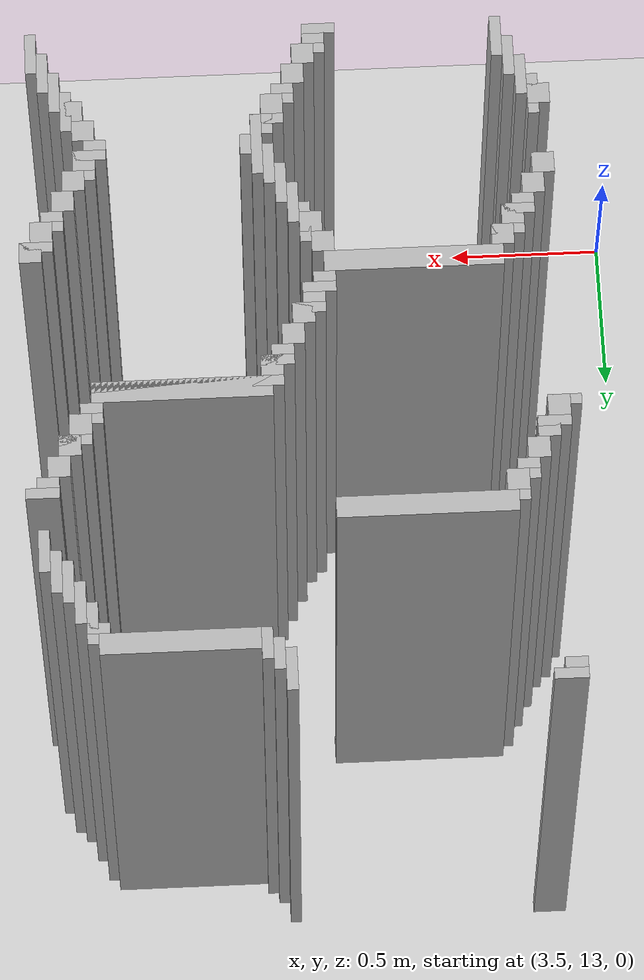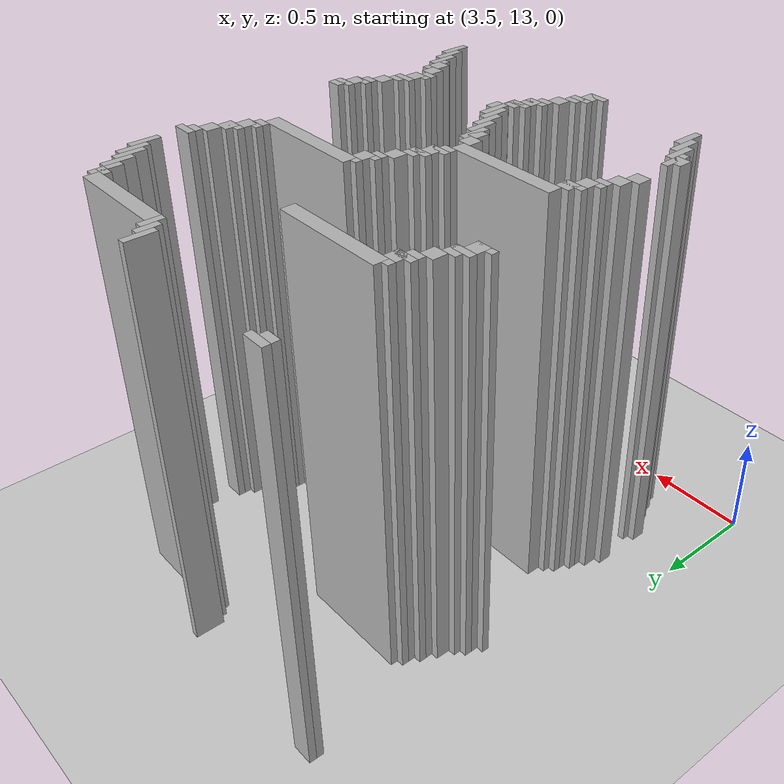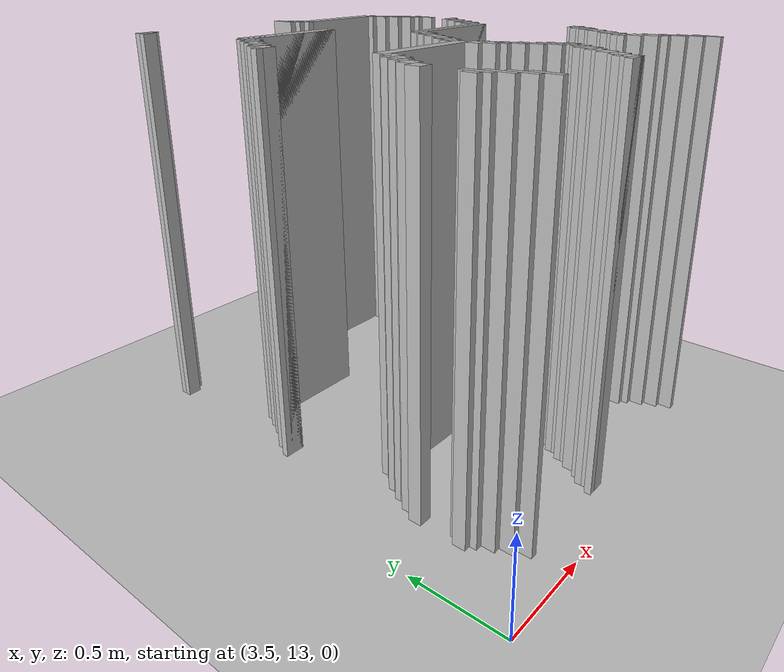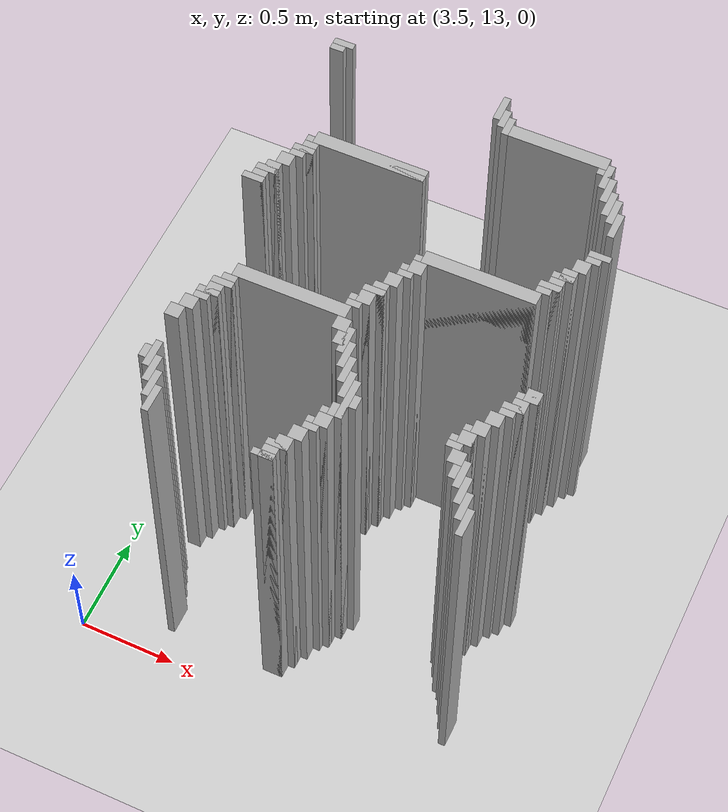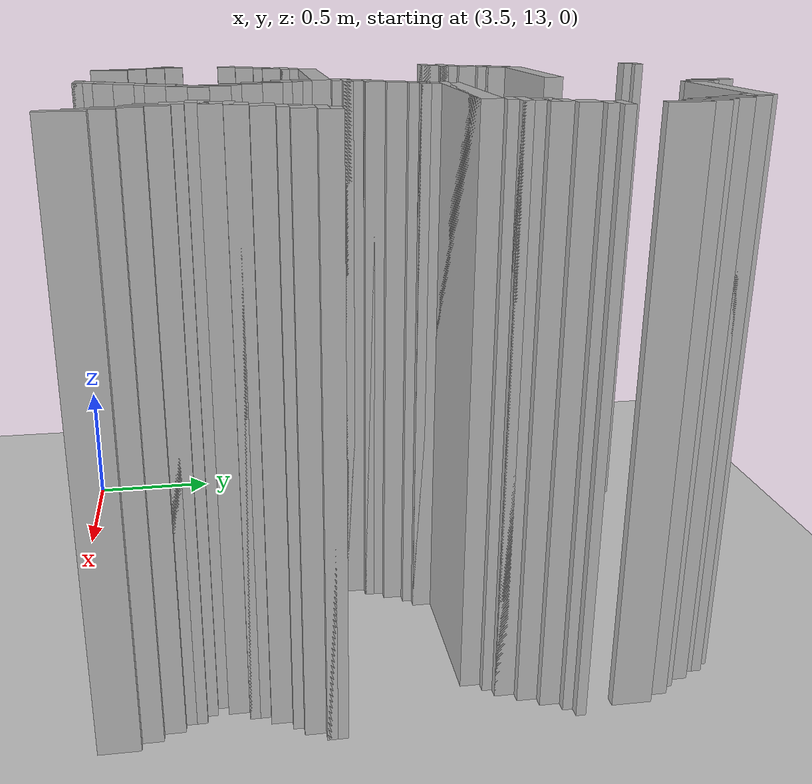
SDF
<sdf version="1.6">
 <world name="slam_world">
  <model name="ground_plane">
   <static>true</static>
   <link name="link">
    <collision name="collision">
     <geometry><plane><normal>0 0 1</normal><size>100 100</size></plane></geometry>
    </collision>
    <visual name="visual">
     <geometry><plane><normal>0 0 1</normal><size>100 100</size></plane></geometry>
     <material>
      <ambient>0.8 0.8 0.8 1</ambient>
      <diffuse>0.8 0.8 0.8 1</diffuse>
      <specular>0.8 0.8 0.8 1</specular>
     </material>
    </visual>
   </link>
  </model>
  <model name="wall_674">
   <static>true</static>
   <pose>3.810904872389791 15.400232018561484 1.0 0 0 0</pose>
   <link name="link">
    <collision name="collision">
     <geometry><box><size>0.10440835266821345 0.03480278422273782 2.0</size></box></geometry>
    </collision>
    <visual name="visual">
     <geometry><box><size>0.10440835266821345 0.03480278422273782 2.0</size></box></geometry>
     <material><ambient>0.5 0.5 0.5 1</ambient><diffuse>0.7 0.7 0.7 1</diffuse></material>
    </visual>
   </link>
  </model>
  <model name="wall_675">
   <static>true</static>
   <pose>4.646171693735498 15.348027842227378 1.0 0 0 0</pose>
   <link name="link">
    <collision name="collision">
     <geometry><box><size>0.03480278422273782 0.13921113689095127 2.0</size></box></geometry>
    </collision>
    <visual name="visual">
     <geometry><box><size>0.03480278422273782 0.13921113689095127 2.0</size></box></geometry>
     <material><ambient>0.5 0.5 0.5 1</ambient><diffuse>0.7 0.7 0.7 1</diffuse></material>
    </visual>
   </link>
  </model>
  <model name="wall_687">
   <static>true</static>
   <pose>3.793503480278422 15.365429234338746 1.0 0 0 0</pose>
   <link name="link">
    <collision name="collision">
     <geometry><box><size>0.06960556844547564 0.03480278422273782 2.0</size></box></geometry>
    </collision>
    <visual name="visual">
     <geometry><box><size>0.06960556844547564 0.03480278422273782 2.0</size></box></geometry>
     <material><ambient>0.5 0.5 0.5 1</ambient><diffuse>0.7 0.7 0.7 1</diffuse></material>
    </visual>
   </link>
  </model>
  <model name="wall_697">
   <static>true</static>
   <pose>4.6809744779582365 15.295823665893272 1.0 0 0 0</pose>
   <link name="link">
    <collision name="collision">
     <geometry><box><size>0.03480278422273782 0.10440835266821345 2.0</size></box></geometry>
    </collision>
    <visual name="visual">
     <geometry><box><size>0.03480278422273782 0.10440835266821345 2.0</size></box></geometry>
     <material><ambient>0.5 0.5 0.5 1</ambient><diffuse>0.7 0.7 0.7 1</diffuse></material>
    </visual>
   </link>
  </model>
  <model name="wall_713">
   <static>true</static>
   <pose>4.715777262180974 15.261020881670532 1.0 0 0 0</pose>
   <link name="link">
    <collision name="collision">
     <geometry><box><size>0.03480278422273782 0.10440835266821345 2.0</size></box></geometry>
    </collision>
    <visual name="visual">
     <geometry><box><size>0.03480278422273782 0.10440835266821345 2.0</size></box></geometry>
     <material><ambient>0.5 0.5 0.5 1</ambient><diffuse>0.7 0.7 0.7 1</diffuse></material>
    </visual>
   </link>
  </model>
  <model name="wall_726">
   <static>true</static>
   <pose>4.976798143851508 15.243619489559164 1.0 0 0 0</pose>
   <link name="link">
    <collision name="collision">
     <geometry><box><size>0.4872389791183295 0.06960556844547564 2.0</size></box></geometry>
    </collision>
    <visual name="visual">
     <geometry><box><size>0.4872389791183295 0.06960556844547564 2.0</size></box></geometry>
     <material><ambient>0.5 0.5 0.5 1</ambient><diffuse>0.7 0.7 0.7 1</diffuse></material>
    </visual>
   </link>
  </model>
  <model name="wall_736">
   <static>true</static>
   <pose>5.237819025522041 15.174013921113689 1.0 0 0 0</pose>
   <link name="link">
    <collision name="collision">
     <geometry><box><size>0.03480278422273782 0.13921113689095127 2.0</size></box></geometry>
    </collision>
    <visual name="visual">
     <geometry><box><size>0.03480278422273782 0.13921113689095127 2.0</size></box></geometry>
     <material><ambient>0.5 0.5 0.5 1</ambient><diffuse>0.7 0.7 0.7 1</diffuse></material>
    </visual>
   </link>
  </model>
  <model name="wall_748">
   <static>true</static>
   <pose>5.220417633410673 15.191415313225058 1.0 0 0 0</pose>
   <link name="link">
    <collision name="collision">
     <geometry><box><size>0.06960556844547564 0.03480278422273782 2.0</size></box></geometry>
    </collision>
    <visual name="visual">
     <geometry><box><size>0.06960556844547564 0.03480278422273782 2.0</size></box></geometry>
     <material><ambient>0.5 0.5 0.5 1</ambient><diffuse>0.7 0.7 0.7 1</diffuse></material>
    </visual>
   </link>
  </model>
  <model name="wall_762">
   <static>true</static>
   <pose>5.27262180974478 15.104408352668212 1.0 0 0 0</pose>
   <link name="link">
    <collision name="collision">
     <geometry><box><size>0.03480278422273782 0.13921113689095127 2.0</size></box></geometry>
    </collision>
    <visual name="visual">
     <geometry><box><size>0.03480278422273782 0.13921113689095127 2.0</size></box></geometry>
     <material><ambient>0.5 0.5 0.5 1</ambient><diffuse>0.7 0.7 0.7 1</diffuse></material>
    </visual>
   </link>
  </model>
  <model name="wall_776">
   <static>true</static>
   <pose>5.307424593967517 15.034802784222737 1.0 0 0 0</pose>
   <link name="link">
    <collision name="collision">
     <geometry><box><size>0.03480278422273782 0.13921113689095127 2.0</size></box></geometry>
    </collision>
    <visual name="visual">
     <geometry><box><size>0.03480278422273782 0.13921113689095127 2.0</size></box></geometry>
     <material><ambient>0.5 0.5 0.5 1</ambient><diffuse>0.7 0.7 0.7 1</diffuse></material>
    </visual>
   </link>
  </model>
  <model name="wall_790">
   <static>true</static>
   <pose>5.342227378190255 15.0 1.0 0 0 0</pose>
   <link name="link">
    <collision name="collision">
     <geometry><box><size>0.03480278422273782 0.13921113689095127 2.0</size></box></geometry>
    </collision>
    <visual name="visual">
     <geometry><box><size>0.03480278422273782 0.13921113689095127 2.0</size></box></geometry>
     <material><ambient>0.5 0.5 0.5 1</ambient><diffuse>0.7 0.7 0.7 1</diffuse></material>
    </visual>
   </link>
  </model>
  <model name="wall_816">
   <static>true</static>
   <pose>5.377030162412993 14.930394431554523 1.0 0 0 0</pose>
   <link name="link">
    <collision name="collision">
     <geometry><box><size>0.03480278422273782 0.13921113689095127 2.0</size></box></geometry>
    </collision>
    <visual name="visual">
     <geometry><box><size>0.03480278422273782 0.13921113689095127 2.0</size></box></geometry>
     <material><ambient>0.5 0.5 0.5 1</ambient><diffuse>0.7 0.7 0.7 1</diffuse></material>
    </visual>
   </link>
  </model>
  <model name="wall_859">
   <static>true</static>
   <pose>4.211136890951276 14.825986078886311 1.0 0 0 0</pose>
   <link name="link">
    <collision name="collision">
     <geometry><box><size>0.5568445475638051 0.06960556844547564 2.0</size></box></geometry>
    </collision>
    <visual name="visual">
     <geometry><box><size>0.5568445475638051 0.06960556844547564 2.0</size></box></geometry>
     <material><ambient>0.5 0.5 0.5 1</ambient><diffuse>0.7 0.7 0.7 1</diffuse></material>
    </visual>
   </link>
  </model>
  <model name="wall_873">
   <static>true</static>
   <pose>4.193735498839907 14.80858468677494 1.0 0 0 0</pose>
   <link name="link">
    <collision name="collision">
     <geometry><box><size>0.5916473317865429 0.03480278422273782 2.0</size></box></geometry>
    </collision>
    <visual name="visual">
     <geometry><box><size>0.5916473317865429 0.03480278422273782 2.0</size></box></geometry>
     <material><ambient>0.5 0.5 0.5 1</ambient><diffuse>0.7 0.7 0.7 1</diffuse></material>
    </visual>
   </link>
  </model>
  <model name="wall_886">
   <static>true</static>
   <pose>3.932714617169373 14.756380510440835 1.0 0 0 0</pose>
   <link name="link">
    <collision name="collision">
     <geometry><box><size>0.06960556844547564 0.06960556844547564 2.0</size></box></geometry>
    </collision>
    <visual name="visual">
     <geometry><box><size>0.06960556844547564 0.06960556844547564 2.0</size></box></geometry>
     <material><ambient>0.5 0.5 0.5 1</ambient><diffuse>0.7 0.7 0.7 1</diffuse></material>
    </visual>
   </link>
  </model>
  <model name="wall_902">
   <static>true</static>
   <pose>3.9153132250580045 14.738979118329466 1.0 0 0 0</pose>
   <link name="link">
    <collision name="collision">
     <geometry><box><size>0.10440835266821345 0.03480278422273782 2.0</size></box></geometry>
    </collision>
    <visual name="visual">
     <geometry><box><size>0.10440835266821345 0.03480278422273782 2.0</size></box></geometry>
     <material><ambient>0.5 0.5 0.5 1</ambient><diffuse>0.7 0.7 0.7 1</diffuse></material>
    </visual>
   </link>
  </model>
  <model name="wall_903">
   <static>true</static>
   <pose>5.377030162412993 14.738979118329466 1.0 0 0 0</pose>
   <link name="link">
    <collision name="collision">
     <geometry><box><size>0.10440835266821345 0.03480278422273782 2.0</size></box></geometry>
    </collision>
    <visual name="visual">
     <geometry><box><size>0.10440835266821345 0.03480278422273782 2.0</size></box></geometry>
     <material><ambient>0.5 0.5 0.5 1</ambient><diffuse>0.7 0.7 0.7 1</diffuse></material>
    </visual>
   </link>
  </model>
  <model name="wall_916">
   <static>true</static>
   <pose>3.897911832946636 14.704176334106728 1.0 0 0 0</pose>
   <link name="link">
    <collision name="collision">
     <geometry><box><size>0.06960556844547564 0.03480278422273782 2.0</size></box></geometry>
    </collision>
    <visual name="visual">
     <geometry><box><size>0.06960556844547564 0.03480278422273782 2.0</size></box></geometry>
     <material><ambient>0.5 0.5 0.5 1</ambient><diffuse>0.7 0.7 0.7 1</diffuse></material>
    </visual>
   </link>
  </model>
  <model name="wall_917">
   <static>true</static>
   <pose>5.359628770301624 14.704176334106728 1.0 0 0 0</pose>
   <link name="link">
    <collision name="collision">
     <geometry><box><size>0.06960556844547564 0.03480278422273782 2.0</size></box></geometry>
    </collision>
    <visual name="visual">
     <geometry><box><size>0.06960556844547564 0.03480278422273782 2.0</size></box></geometry>
     <material><ambient>0.5 0.5 0.5 1</ambient><diffuse>0.7 0.7 0.7 1</diffuse></material>
    </visual>
   </link>
  </model>
  <model name="wall_929">
   <static>true</static>
   <pose>3.863109048723898 14.65197215777262 1.0 0 0 0</pose>
   <link name="link">
    <collision name="collision">
     <geometry><box><size>0.06960556844547564 0.06960556844547564 2.0</size></box></geometry>
    </collision>
    <visual name="visual">
     <geometry><box><size>0.06960556844547564 0.06960556844547564 2.0</size></box></geometry>
     <material><ambient>0.5 0.5 0.5 1</ambient><diffuse>0.7 0.7 0.7 1</diffuse></material>
    </visual>
   </link>
  </model>
  <model name="wall_930">
   <static>true</static>
   <pose>5.324825986078886 14.65197215777262 1.0 0 0 0</pose>
   <link name="link">
    <collision name="collision">
     <geometry><box><size>0.06960556844547564 0.06960556844547564 2.0</size></box></geometry>
    </collision>
    <visual name="visual">
     <geometry><box><size>0.06960556844547564 0.06960556844547564 2.0</size></box></geometry>
     <material><ambient>0.5 0.5 0.5 1</ambient><diffuse>0.7 0.7 0.7 1</diffuse></material>
    </visual>
   </link>
  </model>
  <model name="wall_945">
   <static>true</static>
   <pose>3.82830626450116 14.582366589327146 1.0 0 0 0</pose>
   <link name="link">
    <collision name="collision">
     <geometry><box><size>0.06960556844547564 0.06960556844547564 2.0</size></box></geometry>
    </collision>
    <visual name="visual">
     <geometry><box><size>0.06960556844547564 0.06960556844547564 2.0</size></box></geometry>
     <material><ambient>0.5 0.5 0.5 1</ambient><diffuse>0.7 0.7 0.7 1</diffuse></material>
    </visual>
   </link>
  </model>
  <model name="wall_946">
   <static>true</static>
   <pose>5.290023201856148 14.582366589327146 1.0 0 0 0</pose>
   <link name="link">
    <collision name="collision">
     <geometry><box><size>0.06960556844547564 0.06960556844547564 2.0</size></box></geometry>
    </collision>
    <visual name="visual">
     <geometry><box><size>0.06960556844547564 0.06960556844547564 2.0</size></box></geometry>
     <material><ambient>0.5 0.5 0.5 1</ambient><diffuse>0.7 0.7 0.7 1</diffuse></material>
    </visual>
   </link>
  </model>
  <model name="wall_961">
   <static>true</static>
   <pose>3.810904872389791 14.564965197215777 1.0 0 0 0</pose>
   <link name="link">
    <collision name="collision">
     <geometry><box><size>0.10440835266821345 0.03480278422273782 2.0</size></box></geometry>
    </collision>
    <visual name="visual">
     <geometry><box><size>0.10440835266821345 0.03480278422273782 2.0</size></box></geometry>
     <material><ambient>0.5 0.5 0.5 1</ambient><diffuse>0.7 0.7 0.7 1</diffuse></material>
    </visual>
   </link>
  </model>
  <model name="wall_962">
   <static>true</static>
   <pose>5.27262180974478 14.564965197215777 1.0 0 0 0</pose>
   <link name="link">
    <collision name="collision">
     <geometry><box><size>0.10440835266821345 0.03480278422273782 2.0</size></box></geometry>
    </collision>
    <visual name="visual">
     <geometry><box><size>0.10440835266821345 0.03480278422273782 2.0</size></box></geometry>
     <material><ambient>0.5 0.5 0.5 1</ambient><diffuse>0.7 0.7 0.7 1</diffuse></material>
    </visual>
   </link>
  </model>
  <model name="wall_974">
   <static>true</static>
   <pose>3.793503480278422 14.512761020881669 1.0 0 0 0</pose>
   <link name="link">
    <collision name="collision">
     <geometry><box><size>0.06960556844547564 0.06960556844547564 2.0</size></box></geometry>
    </collision>
    <visual name="visual">
     <geometry><box><size>0.06960556844547564 0.06960556844547564 2.0</size></box></geometry>
     <material><ambient>0.5 0.5 0.5 1</ambient><diffuse>0.7 0.7 0.7 1</diffuse></material>
    </visual>
   </link>
  </model>
  <model name="wall_975">
   <static>true</static>
   <pose>5.25522041763341 14.512761020881669 1.0 0 0 0</pose>
   <link name="link">
    <collision name="collision">
     <geometry><box><size>0.06960556844547564 0.06960556844547564 2.0</size></box></geometry>
    </collision>
    <visual name="visual">
     <geometry><box><size>0.06960556844547564 0.06960556844547564 2.0</size></box></geometry>
     <material><ambient>0.5 0.5 0.5 1</ambient><diffuse>0.7 0.7 0.7 1</diffuse></material>
    </visual>
   </link>
  </model>
  <model name="wall_984">
   <static>true</static>
   <pose>3.776102088167053 14.4953596287703 1.0 0 0 0</pose>
   <link name="link">
    <collision name="collision">
     <geometry><box><size>0.10440835266821345 0.03480278422273782 2.0</size></box></geometry>
    </collision>
    <visual name="visual">
     <geometry><box><size>0.10440835266821345 0.03480278422273782 2.0</size></box></geometry>
     <material><ambient>0.5 0.5 0.5 1</ambient><diffuse>0.7 0.7 0.7 1</diffuse></material>
    </visual>
   </link>
  </model>
  <model name="wall_985">
   <static>true</static>
   <pose>5.237819025522041 14.4953596287703 1.0 0 0 0</pose>
   <link name="link">
    <collision name="collision">
     <geometry><box><size>0.10440835266821345 0.03480278422273782 2.0</size></box></geometry>
    </collision>
    <visual name="visual">
     <geometry><box><size>0.10440835266821345 0.03480278422273782 2.0</size></box></geometry>
     <material><ambient>0.5 0.5 0.5 1</ambient><diffuse>0.7 0.7 0.7 1</diffuse></material>
    </visual>
   </link>
  </model>
  <model name="wall_998">
   <static>true</static>
   <pose>5.220417633410673 14.460556844547563 1.0 0 0 0</pose>
   <link name="link">
    <collision name="collision">
     <geometry><box><size>0.06960556844547564 0.03480278422273782 2.0</size></box></geometry>
    </collision>
    <visual name="visual">
     <geometry><box><size>0.06960556844547564 0.03480278422273782 2.0</size></box></geometry>
     <material><ambient>0.5 0.5 0.5 1</ambient><diffuse>0.7 0.7 0.7 1</diffuse></material>
    </visual>
   </link>
  </model>
  <model name="wall_1007">
   <static>true</static>
   <pose>4.94199535962877 14.408352668213457 1.0 0 0 0</pose>
   <link name="link">
    <collision name="collision">
     <geometry><box><size>0.5568445475638051 0.06960556844547564 2.0</size></box></geometry>
    </collision>
    <visual name="visual">
     <geometry><box><size>0.5568445475638051 0.06960556844547564 2.0</size></box></geometry>
     <material><ambient>0.5 0.5 0.5 1</ambient><diffuse>0.7 0.7 0.7 1</diffuse></material>
    </visual>
   </link>
  </model>
  <model name="wall_1022">
   <static>true</static>
   <pose>4.924593967517401 14.390951276102088 1.0 0 0 0</pose>
   <link name="link">
    <collision name="collision">
     <geometry><box><size>0.5916473317865429 0.03480278422273782 2.0</size></box></geometry>
    </collision>
    <visual name="visual">
     <geometry><box><size>0.5916473317865429 0.03480278422273782 2.0</size></box></geometry>
     <material><ambient>0.5 0.5 0.5 1</ambient><diffuse>0.7 0.7 0.7 1</diffuse></material>
    </visual>
   </link>
  </model>
  <model name="wall_1034">
   <static>true</static>
   <pose>4.663573085846868 14.33874709976798 1.0 0 0 0</pose>
   <link name="link">
    <collision name="collision">
     <geometry><box><size>0.06960556844547564 0.06960556844547564 2.0</size></box></geometry>
    </collision>
    <visual name="visual">
     <geometry><box><size>0.06960556844547564 0.06960556844547564 2.0</size></box></geometry>
     <material><ambient>0.5 0.5 0.5 1</ambient><diffuse>0.7 0.7 0.7 1</diffuse></material>
    </visual>
   </link>
  </model>
  <model name="wall_1046">
   <static>true</static>
   <pose>4.646171693735498 14.321345707656612 1.0 0 0 0</pose>
   <link name="link">
    <collision name="collision">
     <geometry><box><size>0.10440835266821345 0.03480278422273782 2.0</size></box></geometry>
    </collision>
    <visual name="visual">
     <geometry><box><size>0.10440835266821345 0.03480278422273782 2.0</size></box></geometry>
     <material><ambient>0.5 0.5 0.5 1</ambient><diffuse>0.7 0.7 0.7 1</diffuse></material>
    </visual>
   </link>
  </model>
  <model name="wall_1057">
   <static>true</static>
   <pose>4.6287703016241295 14.286542923433874 1.0 0 0 0</pose>
   <link name="link">
    <collision name="collision">
     <geometry><box><size>0.06960556844547564 0.03480278422273782 2.0</size></box></geometry>
    </collision>
    <visual name="visual">
     <geometry><box><size>0.06960556844547564 0.03480278422273782 2.0</size></box></geometry>
     <material><ambient>0.5 0.5 0.5 1</ambient><diffuse>0.7 0.7 0.7 1</diffuse></material>
    </visual>
   </link>
  </model>
  <model name="wall_1065">
   <static>true</static>
   <pose>4.593967517401392 14.234338747099768 1.0 0 0 0</pose>
   <link name="link">
    <collision name="collision">
     <geometry><box><size>0.06960556844547564 0.06960556844547564 2.0</size></box></geometry>
    </collision>
    <visual name="visual">
     <geometry><box><size>0.06960556844547564 0.06960556844547564 2.0</size></box></geometry>
     <material><ambient>0.5 0.5 0.5 1</ambient><diffuse>0.7 0.7 0.7 1</diffuse></material>
    </visual>
   </link>
  </model>
  <model name="wall_1077">
   <static>true</static>
   <pose>4.559164733178654 14.164733178654291 1.0 0 0 0</pose>
   <link name="link">
    <collision name="collision">
     <geometry><box><size>0.06960556844547564 0.06960556844547564 2.0</size></box></geometry>
    </collision>
    <visual name="visual">
     <geometry><box><size>0.06960556844547564 0.06960556844547564 2.0</size></box></geometry>
     <material><ambient>0.5 0.5 0.5 1</ambient><diffuse>0.7 0.7 0.7 1</diffuse></material>
    </visual>
   </link>
  </model>
  <model name="wall_1089">
   <static>true</static>
   <pose>4.541763341067285 14.147331786542923 1.0 0 0 0</pose>
   <link name="link">
    <collision name="collision">
     <geometry><box><size>0.10440835266821345 0.03480278422273782 2.0</size></box></geometry>
    </collision>
    <visual name="visual">
     <geometry><box><size>0.10440835266821345 0.03480278422273782 2.0</size></box></geometry>
     <material><ambient>0.5 0.5 0.5 1</ambient><diffuse>0.7 0.7 0.7 1</diffuse></material>
    </visual>
   </link>
  </model>
  <model name="wall_1100">
   <static>true</static>
   <pose>4.524361948955916 14.095127610208817 1.0 0 0 0</pose>
   <link name="link">
    <collision name="collision">
     <geometry><box><size>0.06960556844547564 0.06960556844547564 2.0</size></box></geometry>
    </collision>
    <visual name="visual">
     <geometry><box><size>0.06960556844547564 0.06960556844547564 2.0</size></box></geometry>
     <material><ambient>0.5 0.5 0.5 1</ambient><diffuse>0.7 0.7 0.7 1</diffuse></material>
    </visual>
   </link>
  </model>
  <model name="wall_1108">
   <static>true</static>
   <pose>4.506960556844548 14.077726218097448 1.0 0 0 0</pose>
   <link name="link">
    <collision name="collision">
     <geometry><box><size>0.10440835266821345 0.03480278422273782 2.0</size></box></geometry>
    </collision>
    <visual name="visual">
     <geometry><box><size>0.10440835266821345 0.03480278422273782 2.0</size></box></geometry>
     <material><ambient>0.5 0.5 0.5 1</ambient><diffuse>0.7 0.7 0.7 1</diffuse></material>
    </visual>
   </link>
  </model>
  <model name="wall_1119">
   <static>true</static>
   <pose>4.489559164733178 14.042923433874709 1.0 0 0 0</pose>
   <link name="link">
    <collision name="collision">
     <geometry><box><size>0.06960556844547564 0.03480278422273782 2.0</size></box></geometry>
    </collision>
    <visual name="visual">
     <geometry><box><size>0.06960556844547564 0.03480278422273782 2.0</size></box></geometry>
     <material><ambient>0.5 0.5 0.5 1</ambient><diffuse>0.7 0.7 0.7 1</diffuse></material>
    </visual>
   </link>
  </model>
  <model name="wall_1128">
   <static>true</static>
   <pose>4.211136890951276 13.990719257540603 1.0 0 0 0</pose>
   <link name="link">
    <collision name="collision">
     <geometry><box><size>0.5568445475638051 0.06960556844547564 2.0</size></box></geometry>
    </collision>
    <visual name="visual">
     <geometry><box><size>0.5568445475638051 0.06960556844547564 2.0</size></box></geometry>
     <material><ambient>0.5 0.5 0.5 1</ambient><diffuse>0.7 0.7 0.7 1</diffuse></material>
    </visual>
   </link>
  </model>
  <model name="wall_1142">
   <static>true</static>
   <pose>3.932714617169373 13.921113689095128 1.0 0 0 0</pose>
   <link name="link">
    <collision name="collision">
     <geometry><box><size>0.06960556844547564 0.06960556844547564 2.0</size></box></geometry>
    </collision>
    <visual name="visual">
     <geometry><box><size>0.06960556844547564 0.06960556844547564 2.0</size></box></geometry>
     <material><ambient>0.5 0.5 0.5 1</ambient><diffuse>0.7 0.7 0.7 1</diffuse></material>
    </visual>
   </link>
  </model>
  <model name="wall_1143">
   <static>true</static>
   <pose>4.489559164733178 13.921113689095128 1.0 0 0 0</pose>
   <link name="link">
    <collision name="collision">
     <geometry><box><size>0.06960556844547564 0.06960556844547564 2.0</size></box></geometry>
    </collision>
    <visual name="visual">
     <geometry><box><size>0.06960556844547564 0.06960556844547564 2.0</size></box></geometry>
     <material><ambient>0.5 0.5 0.5 1</ambient><diffuse>0.7 0.7 0.7 1</diffuse></material>
    </visual>
   </link>
  </model>
  <model name="wall_1144">
   <static>true</static>
   <pose>5.3944315545243615 13.921113689095128 1.0 0 0 0</pose>
   <link name="link">
    <collision name="collision">
     <geometry><box><size>0.06960556844547564 0.06960556844547564 2.0</size></box></geometry>
    </collision>
    <visual name="visual">
     <geometry><box><size>0.06960556844547564 0.06960556844547564 2.0</size></box></geometry>
     <material><ambient>0.5 0.5 0.5 1</ambient><diffuse>0.7 0.7 0.7 1</diffuse></material>
    </visual>
   </link>
  </model>
  <model name="wall_1159">
   <static>true</static>
   <pose>3.9153132250580045 13.903712296983759 1.0 0 0 0</pose>
   <link name="link">
    <collision name="collision">
     <geometry><box><size>0.10440835266821345 0.03480278422273782 2.0</size></box></geometry>
    </collision>
    <visual name="visual">
     <geometry><box><size>0.10440835266821345 0.03480278422273782 2.0</size></box></geometry>
     <material><ambient>0.5 0.5 0.5 1</ambient><diffuse>0.7 0.7 0.7 1</diffuse></material>
    </visual>
   </link>
  </model>
  <model name="wall_1160">
   <static>true</static>
   <pose>4.541763341067285 13.851508120649651 1.0 0 0 0</pose>
   <link name="link">
    <collision name="collision">
     <geometry><box><size>0.03480278422273782 0.13921113689095127 2.0</size></box></geometry>
    </collision>
    <visual name="visual">
     <geometry><box><size>0.03480278422273782 0.13921113689095127 2.0</size></box></geometry>
     <material><ambient>0.5 0.5 0.5 1</ambient><diffuse>0.7 0.7 0.7 1</diffuse></material>
    </visual>
   </link>
  </model>
  <model name="wall_1161">
   <static>true</static>
   <pose>5.377030162412993 13.903712296983759 1.0 0 0 0</pose>
   <link name="link">
    <collision name="collision">
     <geometry><box><size>0.10440835266821345 0.03480278422273782 2.0</size></box></geometry>
    </collision>
    <visual name="visual">
     <geometry><box><size>0.10440835266821345 0.03480278422273782 2.0</size></box></geometry>
     <material><ambient>0.5 0.5 0.5 1</ambient><diffuse>0.7 0.7 0.7 1</diffuse></material>
    </visual>
   </link>
  </model>
  <model name="wall_1176">
   <static>true</static>
   <pose>3.897911832946636 13.851508120649651 1.0 0 0 0</pose>
   <link name="link">
    <collision name="collision">
     <geometry><box><size>0.06960556844547564 0.06960556844547564 2.0</size></box></geometry>
    </collision>
    <visual name="visual">
     <geometry><box><size>0.06960556844547564 0.06960556844547564 2.0</size></box></geometry>
     <material><ambient>0.5 0.5 0.5 1</ambient><diffuse>0.7 0.7 0.7 1</diffuse></material>
    </visual>
   </link>
  </model>
  <model name="wall_1177">
   <static>true</static>
   <pose>4.524361948955916 13.851508120649651 1.0 0 0 0</pose>
   <link name="link">
    <collision name="collision">
     <geometry><box><size>0.06960556844547564 0.06960556844547564 2.0</size></box></geometry>
    </collision>
    <visual name="visual">
     <geometry><box><size>0.06960556844547564 0.06960556844547564 2.0</size></box></geometry>
     <material><ambient>0.5 0.5 0.5 1</ambient><diffuse>0.7 0.7 0.7 1</diffuse></material>
    </visual>
   </link>
  </model>
  <model name="wall_1178">
   <static>true</static>
   <pose>5.359628770301624 13.851508120649651 1.0 0 0 0</pose>
   <link name="link">
    <collision name="collision">
     <geometry><box><size>0.06960556844547564 0.06960556844547564 2.0</size></box></geometry>
    </collision>
    <visual name="visual">
     <geometry><box><size>0.06960556844547564 0.06960556844547564 2.0</size></box></geometry>
     <material><ambient>0.5 0.5 0.5 1</ambient><diffuse>0.7 0.7 0.7 1</diffuse></material>
    </visual>
   </link>
  </model>
  <model name="wall_1193">
   <static>true</static>
   <pose>3.8805104408352666 13.834106728538282 1.0 0 0 0</pose>
   <link name="link">
    <collision name="collision">
     <geometry><box><size>0.10440835266821345 0.03480278422273782 2.0</size></box></geometry>
    </collision>
    <visual name="visual">
     <geometry><box><size>0.10440835266821345 0.03480278422273782 2.0</size></box></geometry>
     <material><ambient>0.5 0.5 0.5 1</ambient><diffuse>0.7 0.7 0.7 1</diffuse></material>
    </visual>
   </link>
  </model>
  <model name="wall_1194">
   <static>true</static>
   <pose>4.576566125290023 13.781902552204176 1.0 0 0 0</pose>
   <link name="link">
    <collision name="collision">
     <geometry><box><size>0.03480278422273782 0.13921113689095127 2.0</size></box></geometry>
    </collision>
    <visual name="visual">
     <geometry><box><size>0.03480278422273782 0.13921113689095127 2.0</size></box></geometry>
     <material><ambient>0.5 0.5 0.5 1</ambient><diffuse>0.7 0.7 0.7 1</diffuse></material>
    </visual>
   </link>
  </model>
  <model name="wall_1195">
   <static>true</static>
   <pose>5.342227378190255 13.834106728538282 1.0 0 0 0</pose>
   <link name="link">
    <collision name="collision">
     <geometry><box><size>0.10440835266821345 0.03480278422273782 2.0</size></box></geometry>
    </collision>
    <visual name="visual">
     <geometry><box><size>0.10440835266821345 0.03480278422273782 2.0</size></box></geometry>
     <material><ambient>0.5 0.5 0.5 1</ambient><diffuse>0.7 0.7 0.7 1</diffuse></material>
    </visual>
   </link>
  </model>
  <model name="wall_1207">
   <static>true</static>
   <pose>3.863109048723898 13.799303944315545 1.0 0 0 0</pose>
   <link name="link">
    <collision name="collision">
     <geometry><box><size>0.06960556844547564 0.03480278422273782 2.0</size></box></geometry>
    </collision>
    <visual name="visual">
     <geometry><box><size>0.06960556844547564 0.03480278422273782 2.0</size></box></geometry>
     <material><ambient>0.5 0.5 0.5 1</ambient><diffuse>0.7 0.7 0.7 1</diffuse></material>
    </visual>
   </link>
  </model>
  <model name="wall_1208">
   <static>true</static>
   <pose>5.324825986078886 13.799303944315545 1.0 0 0 0</pose>
   <link name="link">
    <collision name="collision">
     <geometry><box><size>0.06960556844547564 0.03480278422273782 2.0</size></box></geometry>
    </collision>
    <visual name="visual">
     <geometry><box><size>0.06960556844547564 0.03480278422273782 2.0</size></box></geometry>
     <material><ambient>0.5 0.5 0.5 1</ambient><diffuse>0.7 0.7 0.7 1</diffuse></material>
    </visual>
   </link>
  </model>
  <model name="wall_1216">
   <static>true</static>
   <pose>3.82830626450116 13.747099767981437 1.0 0 0 0</pose>
   <link name="link">
    <collision name="collision">
     <geometry><box><size>0.06960556844547564 0.06960556844547564 2.0</size></box></geometry>
    </collision>
    <visual name="visual">
     <geometry><box><size>0.06960556844547564 0.06960556844547564 2.0</size></box></geometry>
     <material><ambient>0.5 0.5 0.5 1</ambient><diffuse>0.7 0.7 0.7 1</diffuse></material>
    </visual>
   </link>
  </model>
  <model name="wall_1217">
   <static>true</static>
   <pose>4.611368909512761 13.7122969837587 1.0 0 0 0</pose>
   <link name="link">
    <collision name="collision">
     <geometry><box><size>0.03480278422273782 0.13921113689095127 2.0</size></box></geometry>
    </collision>
    <visual name="visual">
     <geometry><box><size>0.03480278422273782 0.13921113689095127 2.0</size></box></geometry>
     <material><ambient>0.5 0.5 0.5 1</ambient><diffuse>0.7 0.7 0.7 1</diffuse></material>
    </visual>
   </link>
  </model>
  <model name="wall_1218">
   <static>true</static>
   <pose>5.290023201856148 13.747099767981437 1.0 0 0 0</pose>
   <link name="link">
    <collision name="collision">
     <geometry><box><size>0.06960556844547564 0.06960556844547564 2.0</size></box></geometry>
    </collision>
    <visual name="visual">
     <geometry><box><size>0.06960556844547564 0.06960556844547564 2.0</size></box></geometry>
     <material><ambient>0.5 0.5 0.5 1</ambient><diffuse>0.7 0.7 0.7 1</diffuse></material>
    </visual>
   </link>
  </model>
  <model name="wall_1233">
   <static>true</static>
   <pose>3.793503480278422 13.677494199535962 1.0 0 0 0</pose>
   <link name="link">
    <collision name="collision">
     <geometry><box><size>0.06960556844547564 0.06960556844547564 2.0</size></box></geometry>
    </collision>
    <visual name="visual">
     <geometry><box><size>0.06960556844547564 0.06960556844547564 2.0</size></box></geometry>
     <material><ambient>0.5 0.5 0.5 1</ambient><diffuse>0.7 0.7 0.7 1</diffuse></material>
    </visual>
   </link>
  </model>
  <model name="wall_1234">
   <static>true</static>
   <pose>4.646171693735498 13.642691415313225 1.0 0 0 0</pose>
   <link name="link">
    <collision name="collision">
     <geometry><box><size>0.03480278422273782 0.13921113689095127 2.0</size></box></geometry>
    </collision>
    <visual name="visual">
     <geometry><box><size>0.03480278422273782 0.13921113689095127 2.0</size></box></geometry>
     <material><ambient>0.5 0.5 0.5 1</ambient><diffuse>0.7 0.7 0.7 1</diffuse></material>
    </visual>
   </link>
  </model>
  <model name="wall_1235">
   <static>true</static>
   <pose>5.25522041763341 13.677494199535962 1.0 0 0 0</pose>
   <link name="link">
    <collision name="collision">
     <geometry><box><size>0.06960556844547564 0.06960556844547564 2.0</size></box></geometry>
    </collision>
    <visual name="visual">
     <geometry><box><size>0.06960556844547564 0.06960556844547564 2.0</size></box></geometry>
     <material><ambient>0.5 0.5 0.5 1</ambient><diffuse>0.7 0.7 0.7 1</diffuse></material>
    </visual>
   </link>
  </model>
  <model name="wall_1251">
   <static>true</static>
   <pose>4.6809744779582365 13.573085846867748 1.0 0 0 0</pose>
   <link name="link">
    <collision name="collision">
     <geometry><box><size>0.03480278422273782 0.2088167053364269 2.0</size></box></geometry>
    </collision>
    <visual name="visual">
     <geometry><box><size>0.03480278422273782 0.2088167053364269 2.0</size></box></geometry>
     <material><ambient>0.5 0.5 0.5 1</ambient><diffuse>0.7 0.7 0.7 1</diffuse></material>
    </visual>
   </link>
  </model>
  <model name="wall_1252">
   <static>true</static>
   <pose>5.237819025522041 13.660092807424594 1.0 0 0 0</pose>
   <link name="link">
    <collision name="collision">
     <geometry><box><size>0.10440835266821345 0.03480278422273782 2.0</size></box></geometry>
    </collision>
    <visual name="visual">
     <geometry><box><size>0.10440835266821345 0.03480278422273782 2.0</size></box></geometry>
     <material><ambient>0.5 0.5 0.5 1</ambient><diffuse>0.7 0.7 0.7 1</diffuse></material>
    </visual>
   </link>
  </model>
  <model name="wall_1265">
   <static>true</static>
   <pose>5.220417633410673 13.607888631090487 1.0 0 0 0</pose>
   <link name="link">
    <collision name="collision">
     <geometry><box><size>0.06960556844547564 0.06960556844547564 2.0</size></box></geometry>
    </collision>
    <visual name="visual">
     <geometry><box><size>0.06960556844547564 0.06960556844547564 2.0</size></box></geometry>
     <material><ambient>0.5 0.5 0.5 1</ambient><diffuse>0.7 0.7 0.7 1</diffuse></material>
    </visual>
   </link>
  </model>
  <model name="wall_1273">
   <static>true</static>
   <pose>4.715777262180974 13.573085846867748 1.0 0 0 0</pose>
   <link name="link">
    <collision name="collision">
     <geometry><box><size>0.03480278422273782 0.06960556844547564 2.0</size></box></geometry>
    </collision>
    <visual name="visual">
     <geometry><box><size>0.03480278422273782 0.06960556844547564 2.0</size></box></geometry>
     <material><ambient>0.5 0.5 0.5 1</ambient><diffuse>0.7 0.7 0.7 1</diffuse></material>
    </visual>
   </link>
  </model>
  <model name="wall_1274">
   <static>true</static>
   <pose>5.203016241299304 13.590487238979117 1.0 0 0 0</pose>
   <link name="link">
    <collision name="collision">
     <geometry><box><size>0.10440835266821345 0.03480278422273782 2.0</size></box></geometry>
    </collision>
    <visual name="visual">
     <geometry><box><size>0.10440835266821345 0.03480278422273782 2.0</size></box></geometry>
     <material><ambient>0.5 0.5 0.5 1</ambient><diffuse>0.7 0.7 0.7 1</diffuse></material>
    </visual>
   </link>
  </model>
  <model name="wall_1286">
   <static>true</static>
   <pose>5.185614849187935 13.55568445475638 1.0 0 0 0</pose>
   <link name="link">
    <collision name="collision">
     <geometry><box><size>0.06960556844547564 0.03480278422273782 2.0</size></box></geometry>
    </collision>
    <visual name="visual">
     <geometry><box><size>0.06960556844547564 0.03480278422273782 2.0</size></box></geometry>
     <material><ambient>0.5 0.5 0.5 1</ambient><diffuse>0.7 0.7 0.7 1</diffuse></material>
    </visual>
   </link>
  </model>
  <model name="wall_1295">
   <static>true</static>
   <pose>4.663573085846868 13.503480278422273 1.0 0 0 0</pose>
   <link name="link">
    <collision name="collision">
     <geometry><box><size>0.06960556844547564 0.06960556844547564 2.0</size></box></geometry>
    </collision>
    <visual name="visual">
     <geometry><box><size>0.06960556844547564 0.06960556844547564 2.0</size></box></geometry>
     <material><ambient>0.5 0.5 0.5 1</ambient><diffuse>0.7 0.7 0.7 1</diffuse></material>
    </visual>
   </link>
  </model>
  <model name="wall_1296">
   <static>true</static>
   <pose>5.220417633410673 13.503480278422273 1.0 0 0 0</pose>
   <link name="link">
    <collision name="collision">
     <geometry><box><size>0.06960556844547564 0.06960556844547564 2.0</size></box></geometry>
    </collision>
    <visual name="visual">
     <geometry><box><size>0.06960556844547564 0.06960556844547564 2.0</size></box></geometry>
     <material><ambient>0.5 0.5 0.5 1</ambient><diffuse>0.7 0.7 0.7 1</diffuse></material>
    </visual>
   </link>
  </model>
  <model name="wall_1308">
   <static>true</static>
   <pose>3.810904872389791 13.433874709976797 1.0 0 0 0</pose>
   <link name="link">
    <collision name="collision">
     <geometry><box><size>0.03480278422273782 0.13921113689095127 2.0</size></box></geometry>
    </collision>
    <visual name="visual">
     <geometry><box><size>0.03480278422273782 0.13921113689095127 2.0</size></box></geometry>
     <material><ambient>0.5 0.5 0.5 1</ambient><diffuse>0.7 0.7 0.7 1</diffuse></material>
    </visual>
   </link>
  </model>
  <model name="wall_1309">
   <static>true</static>
   <pose>4.646171693735498 13.486078886310905 1.0 0 0 0</pose>
   <link name="link">
    <collision name="collision">
     <geometry><box><size>0.10440835266821345 0.03480278422273782 2.0</size></box></geometry>
    </collision>
    <visual name="visual">
     <geometry><box><size>0.10440835266821345 0.03480278422273782 2.0</size></box></geometry>
     <material><ambient>0.5 0.5 0.5 1</ambient><diffuse>0.7 0.7 0.7 1</diffuse></material>
    </visual>
   </link>
  </model>
  <model name="wall_1310">
   <static>true</static>
   <pose>5.27262180974478 13.433874709976797 1.0 0 0 0</pose>
   <link name="link">
    <collision name="collision">
     <geometry><box><size>0.03480278422273782 0.13921113689095127 2.0</size></box></geometry>
    </collision>
    <visual name="visual">
     <geometry><box><size>0.03480278422273782 0.13921113689095127 2.0</size></box></geometry>
     <material><ambient>0.5 0.5 0.5 1</ambient><diffuse>0.7 0.7 0.7 1</diffuse></material>
    </visual>
   </link>
  </model>
  <model name="wall_1322">
   <static>true</static>
   <pose>3.793503480278422 13.433874709976797 1.0 0 0 0</pose>
   <link name="link">
    <collision name="collision">
     <geometry><box><size>0.06960556844547564 0.06960556844547564 2.0</size></box></geometry>
    </collision>
    <visual name="visual">
     <geometry><box><size>0.06960556844547564 0.06960556844547564 2.0</size></box></geometry>
     <material><ambient>0.5 0.5 0.5 1</ambient><diffuse>0.7 0.7 0.7 1</diffuse></material>
    </visual>
   </link>
  </model>
  <model name="wall_1323">
   <static>true</static>
   <pose>4.6287703016241295 13.433874709976797 1.0 0 0 0</pose>
   <link name="link">
    <collision name="collision">
     <geometry><box><size>0.06960556844547564 0.06960556844547564 2.0</size></box></geometry>
    </collision>
    <visual name="visual">
     <geometry><box><size>0.06960556844547564 0.06960556844547564 2.0</size></box></geometry>
     <material><ambient>0.5 0.5 0.5 1</ambient><diffuse>0.7 0.7 0.7 1</diffuse></material>
    </visual>
   </link>
  </model>
  <model name="wall_1324">
   <static>true</static>
   <pose>5.25522041763341 13.433874709976797 1.0 0 0 0</pose>
   <link name="link">
    <collision name="collision">
     <geometry><box><size>0.06960556844547564 0.06960556844547564 2.0</size></box></geometry>
    </collision>
    <visual name="visual">
     <geometry><box><size>0.06960556844547564 0.06960556844547564 2.0</size></box></geometry>
     <material><ambient>0.5 0.5 0.5 1</ambient><diffuse>0.7 0.7 0.7 1</diffuse></material>
    </visual>
   </link>
  </model>
  <model name="wall_1336">
   <static>true</static>
   <pose>3.845707656612529 13.364269141531322 1.0 0 0 0</pose>
   <link name="link">
    <collision name="collision">
     <geometry><box><size>0.03480278422273782 0.13921113689095127 2.0</size></box></geometry>
    </collision>
    <visual name="visual">
     <geometry><box><size>0.03480278422273782 0.13921113689095127 2.0</size></box></geometry>
     <material><ambient>0.5 0.5 0.5 1</ambient><diffuse>0.7 0.7 0.7 1</diffuse></material>
    </visual>
   </link>
  </model>
  <model name="wall_1337">
   <static>true</static>
   <pose>4.611368909512761 13.416473317865428 1.0 0 0 0</pose>
   <link name="link">
    <collision name="collision">
     <geometry><box><size>0.10440835266821345 0.03480278422273782 2.0</size></box></geometry>
    </collision>
    <visual name="visual">
     <geometry><box><size>0.10440835266821345 0.03480278422273782 2.0</size></box></geometry>
     <material><ambient>0.5 0.5 0.5 1</ambient><diffuse>0.7 0.7 0.7 1</diffuse></material>
    </visual>
   </link>
  </model>
  <model name="wall_1338">
   <static>true</static>
   <pose>5.307424593967517 13.364269141531322 1.0 0 0 0</pose>
   <link name="link">
    <collision name="collision">
     <geometry><box><size>0.03480278422273782 0.13921113689095127 2.0</size></box></geometry>
    </collision>
    <visual name="visual">
     <geometry><box><size>0.03480278422273782 0.13921113689095127 2.0</size></box></geometry>
     <material><ambient>0.5 0.5 0.5 1</ambient><diffuse>0.7 0.7 0.7 1</diffuse></material>
    </visual>
   </link>
  </model>
  <model name="wall_1348">
   <static>true</static>
   <pose>4.593967517401392 13.38167053364269 1.0 0 0 0</pose>
   <link name="link">
    <collision name="collision">
     <geometry><box><size>0.06960556844547564 0.03480278422273782 2.0</size></box></geometry>
    </collision>
    <visual name="visual">
     <geometry><box><size>0.06960556844547564 0.03480278422273782 2.0</size></box></geometry>
     <material><ambient>0.5 0.5 0.5 1</ambient><diffuse>0.7 0.7 0.7 1</diffuse></material>
    </visual>
   </link>
  </model>
  <model name="wall_1357">
   <static>true</static>
   <pose>3.8805104408352666 13.294663573085847 1.0 0 0 0</pose>
   <link name="link">
    <collision name="collision">
     <geometry><box><size>0.03480278422273782 0.13921113689095127 2.0</size></box></geometry>
    </collision>
    <visual name="visual">
     <geometry><box><size>0.03480278422273782 0.13921113689095127 2.0</size></box></geometry>
     <material><ambient>0.5 0.5 0.5 1</ambient><diffuse>0.7 0.7 0.7 1</diffuse></material>
    </visual>
   </link>
  </model>
  <model name="wall_1358">
   <static>true</static>
   <pose>4.559164733178654 13.329466357308585 1.0 0 0 0</pose>
   <link name="link">
    <collision name="collision">
     <geometry><box><size>0.06960556844547564 0.06960556844547564 2.0</size></box></geometry>
    </collision>
    <visual name="visual">
     <geometry><box><size>0.06960556844547564 0.06960556844547564 2.0</size></box></geometry>
     <material><ambient>0.5 0.5 0.5 1</ambient><diffuse>0.7 0.7 0.7 1</diffuse></material>
    </visual>
   </link>
  </model>
  <model name="wall_1359">
   <static>true</static>
   <pose>5.342227378190255 13.294663573085847 1.0 0 0 0</pose>
   <link name="link">
    <collision name="collision">
     <geometry><box><size>0.03480278422273782 0.13921113689095127 2.0</size></box></geometry>
    </collision>
    <visual name="visual">
     <geometry><box><size>0.03480278422273782 0.13921113689095127 2.0</size></box></geometry>
     <material><ambient>0.5 0.5 0.5 1</ambient><diffuse>0.7 0.7 0.7 1</diffuse></material>
    </visual>
   </link>
  </model>
  <model name="wall_1371">
   <static>true</static>
   <pose>3.9153132250580045 13.22505800464037 1.0 0 0 0</pose>
   <link name="link">
    <collision name="collision">
     <geometry><box><size>0.03480278422273782 0.13921113689095127 2.0</size></box></geometry>
    </collision>
    <visual name="visual">
     <geometry><box><size>0.03480278422273782 0.13921113689095127 2.0</size></box></geometry>
     <material><ambient>0.5 0.5 0.5 1</ambient><diffuse>0.7 0.7 0.7 1</diffuse></material>
    </visual>
   </link>
  </model>
  <model name="wall_1372">
   <static>true</static>
   <pose>4.524361948955916 13.259860788863108 1.0 0 0 0</pose>
   <link name="link">
    <collision name="collision">
     <geometry><box><size>0.06960556844547564 0.06960556844547564 2.0</size></box></geometry>
    </collision>
    <visual name="visual">
     <geometry><box><size>0.06960556844547564 0.06960556844547564 2.0</size></box></geometry>
     <material><ambient>0.5 0.5 0.5 1</ambient><diffuse>0.7 0.7 0.7 1</diffuse></material>
    </visual>
   </link>
  </model>
  <model name="wall_1373">
   <static>true</static>
   <pose>5.377030162412993 13.22505800464037 1.0 0 0 0</pose>
   <link name="link">
    <collision name="collision">
     <geometry><box><size>0.03480278422273782 0.13921113689095127 2.0</size></box></geometry>
    </collision>
    <visual name="visual">
     <geometry><box><size>0.03480278422273782 0.13921113689095127 2.0</size></box></geometry>
     <material><ambient>0.5 0.5 0.5 1</ambient><diffuse>0.7 0.7 0.7 1</diffuse></material>
    </visual>
   </link>
  </model>
  <model name="wall_1386">
   <static>true</static>
   <pose>4.506960556844548 13.24245939675174 1.0 0 0 0</pose>
   <link name="link">
    <collision name="collision">
     <geometry><box><size>0.10440835266821345 0.03480278422273782 2.0</size></box></geometry>
    </collision>
    <visual name="visual">
     <geometry><box><size>0.10440835266821345 0.03480278422273782 2.0</size></box></geometry>
     <material><ambient>0.5 0.5 0.5 1</ambient><diffuse>0.7 0.7 0.7 1</diffuse></material>
    </visual>
   </link>
  </model>
  <model name="wall_1397">
   <static>true</static>
   <pose>4.489559164733178 13.190255220417633 1.0 0 0 0</pose>
   <link name="link">
    <collision name="collision">
     <geometry><box><size>0.06960556844547564 0.06960556844547564 2.0</size></box></geometry>
    </collision>
    <visual name="visual">
     <geometry><box><size>0.06960556844547564 0.06960556844547564 2.0</size></box></geometry>
     <material><ambient>0.5 0.5 0.5 1</ambient><diffuse>0.7 0.7 0.7 1</diffuse></material>
    </visual>
   </link>
  </model>
  <model name="wall_1407">
   <static>true</static>
   <pose>4.472157772621809 13.172853828306264 1.0 0 0 0</pose>
   <link name="link">
    <collision name="collision">
     <geometry><box><size>0.10440835266821345 0.03480278422273782 2.0</size></box></geometry>
    </collision>
    <visual name="visual">
     <geometry><box><size>0.10440835266821345 0.03480278422273782 2.0</size></box></geometry>
     <material><ambient>0.5 0.5 0.5 1</ambient><diffuse>0.7 0.7 0.7 1</diffuse></material>
    </visual>
   </link>
  </model>
 </world>
</sdf>
